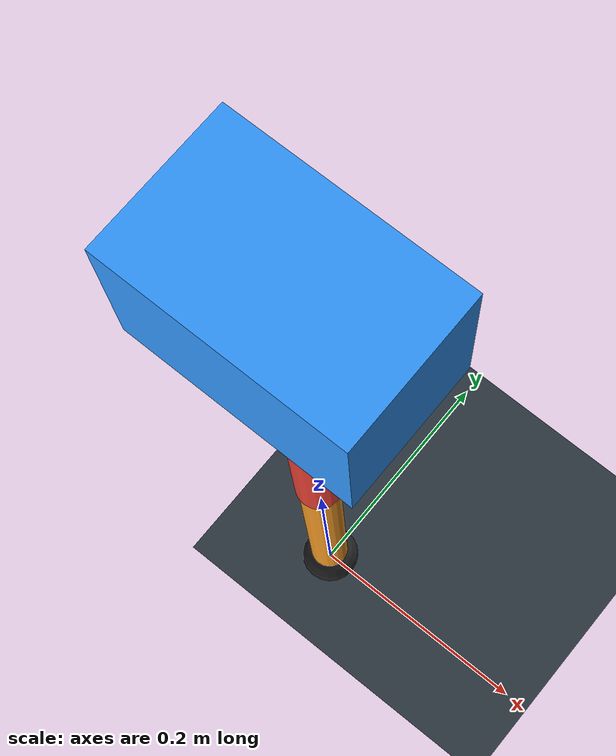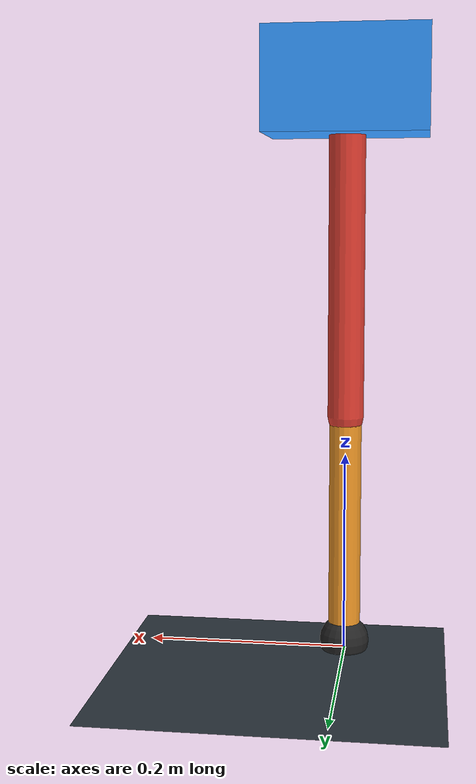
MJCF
<mujoco model="single_axis_two_bar">
  <compiler angle="radian" inertiafromgeom="true"/>
  <option timestep="0.001" integrator="implicitfast" gravity="0 0 -9.81"/>
  <default>
    <joint damping="0.08"/>
    <geom friction="1.2 0.01 0.0001" condim="3"/>
  </default>
  <worldbody>
    <geom name="floor" type="plane" size="5 5 0.1" rgba="0.18 0.22 0.25 1"/>
    <body name="carriage" pos="0 0 0.56742920563895">
      <joint name="pole_slide" type="slide" axis="0 0 1"/>
      <geom name="payload" type="box" size="0.08 0.05 0.05" mass="3.136904861958638" rgba="0.2 0.6 1 1"/>
      <body name="thigh" pos="0 0 0">
        <joint name="hip" type="hinge" axis="0 1 0"/>
        <geom name="thigh_link" type="capsule" fromto="0 0 0 0 0 -0.32895969032919936" size="0.018" mass="0.23438812617834953" rgba="0.9 0.25 0.2 1"/>
        <body name="shank" pos="0 0 -0.32895969032919936">
          <joint name="knee" type="hinge" axis="0 1 0"/>
          <geom name="shank_link" type="capsule" fromto="0 0 0 0 0 -0.2302456763088935" size="0.016" mass="0.16405308679827058" rgba="0.95 0.6 0.15 1"/>
          <geom name="foot" type="sphere" pos="0 0 -0.2302456763088935" size="0.025" mass="0.03" rgba="0.15 0.15 0.15 1"/>
          <site name="toe" pos="0 0 -0.2302456763088935" size="0.008"/>
        </body>
      </body>
    </body>
  </worldbody>
  <actuator>
    <motor name="hip_motor" joint="hip" ctrlrange="-57.15444508550805 57.15444508550805"/>
    <motor name="knee_motor" joint="knee" ctrlrange="-97.66384868361382 97.66384868361382"/>
  </actuator>
</mujoco>
